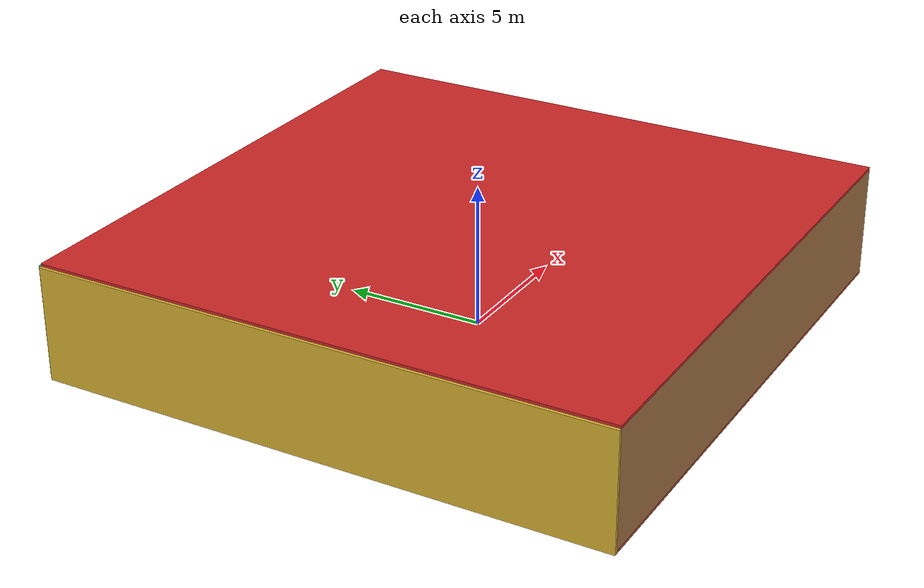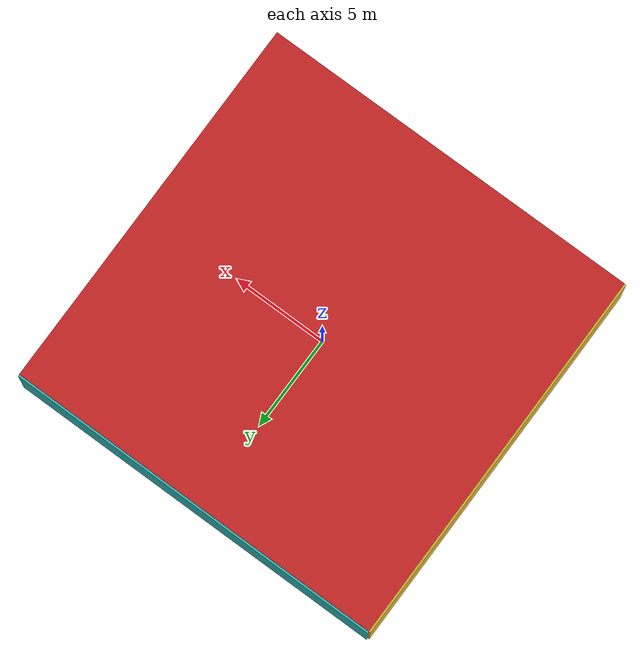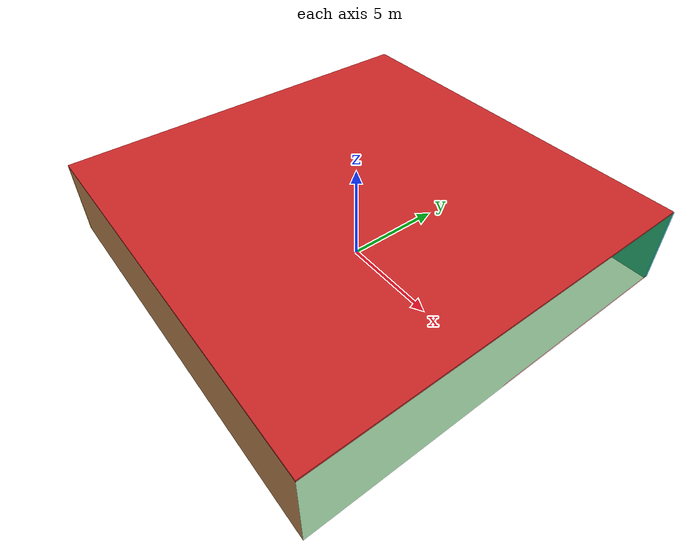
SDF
<sdf version="1.4">
 <world name="default">
  <physics type="ode">
   <max_step_size>0.001</max_step_size>
   <real_time_factor>1</real_time_factor>
   <real_time_update_rate>1000</real_time_update_rate>
   <gravity>0 0 -9.8</gravity>
  </physics>
  <scene><ambient>0.4 0.4 0.4 1</ambient><background>0.7 0.7 0.7 1</background><shadows>1</shadows></scene>
  <model name="Surrounding">
   <static>1</static>
   <link name="Ceiling">
    <collision name="Ceiling_Collision"><geometry><box><size>20 20 0.1</size></box></geometry></collision>
    <visual name="Ceiling_Visual">
     <geometry><box><size>20 20 0.1</size></box></geometry>
     <material>
      <script><uri>file://media/materials/scripts/gazebo.material</uri><name>Gazebo/Red</name></script>
     </material>
    </visual>
    <pose>0 0 4.05 0 0 0</pose>
   </link>
   <link name="Wall_South">
    <collision name="Wall_South_Collision">
     <geometry><box><size>20 0 4</size></box></geometry>
     <pose>0 0 2 0 -0 0</pose>
    </collision>
    <visual name="Wall_South_Visual">
     <pose>0 0 2 0 -0 0</pose>
     <geometry><box><size>20 0 4</size></box></geometry>
     <material>
      <script><uri>file://media/materials/scripts/gazebo.material</uri><name>Gazebo/WoodFloor</name></script>
     </material>
    </visual>
    <velocity_decay><linear>0</linear><angular>0</angular></velocity_decay>
    <pose>0 -10 0 0 -0 0</pose>
   </link>
   <link name="Wall_East">
    <collision name="Wall_21_Collision">
     <geometry><box><size>20 0 4</size></box></geometry>
     <pose>0 0 2 0 -0 0</pose>
    </collision>
    <visual name="Wall_21_Visual">
     <pose>0 0 2 0 -0 0</pose>
     <geometry><box><size>20 0 4</size></box></geometry>
     <material>
      <script><uri>file://media/materials/scripts/gazebo.material</uri><name>Gazebo/GreenTransparent</name></script>
     </material>
    </visual>
    <velocity_decay><linear>0</linear><angular>0</angular></velocity_decay>
    <pose>10 0 0 0 -0 1.5708</pose>
   </link>
   <link name="Wall_North">
    <collision name="Wall_22_Collision">
     <geometry><box><size>20 0.2 4</size></box></geometry>
     <pose>0 0 2 0 -0 0</pose>
    </collision>
    <visual name="Wall_22_Visual">
     <pose>0 0 2 0 -0 0</pose>
     <geometry><box><size>20 0.2 4</size></box></geometry>
     <material>
      <script><uri>file://media/materials/scripts/gazebo.material</uri><name>Gazebo/Turquoise</name></script>
     </material>
    </visual>
    <velocity_decay><linear>0</linear><angular>0</angular></velocity_decay>
    <pose>0 10 0 0 -0 0</pose>
   </link>
   <link name="Wall_West">
    <collision name="Wall_23_Collision">
     <geometry><box><size>20 0.2 4</size></box></geometry>
     <pose>0 0 2 0 -0 0</pose>
    </collision>
    <visual name="Wall_23_Visual">
     <pose>0 0 2 0 -0 0</pose>
     <geometry><box><size>20 0.2 4</size></box></geometry>
     <material>
      <script><uri>file://media/materials/scripts/gazebo.material</uri><name>Gazebo/Gold</name></script>
     </material>
    </visual>
    <velocity_decay><linear>0</linear><angular>0</angular></velocity_decay>
    <pose>-10 0 0 0 0 -1.5708</pose>
   </link>
   <link name="Ground_link">
    <collision name="collision">
     <pose>0 0 .05 0 -0 0</pose>
     <geometry><box><size>20 20 0.1</size></box></geometry>
    </collision>
    <visual name="visual">
     <pose>0 0 .05 0 -0 0</pose>
     <geometry><box><size>20 20 0.1</size></box></geometry>
     <material>
      <script><uri>file://media/materials/scripts/gazebo.material</uri><name>Gazebo/RedTransparent</name></script>
     </material>
    </visual>
   </link>
   <static>1</static>
  </model>
  <spherical_coordinates>
   <surface_model>EARTH_WGS84</surface_model>
   <latitude_deg>0</latitude_deg>
   <longitude_deg>0</longitude_deg>
   <elevation>0</elevation>
   <heading_deg>0</heading_deg>
  </spherical_coordinates>
  <light name="lightball_0" type="diffuse">
   <diffuse>0.8 0.8 0.8 1</diffuse>
   <specular>0.2 0.2 0.2 1</specular>
   <attenuation>
    <range>100</range>
    <constant>0.7</constant>
    <linear>0.01</linear>
    <quadratic>0.001</quadratic>
   </attenuation>
   <direction>-0.5 0.1 -0.9</direction>
   <pose>6.39078627743 8.98682954078 3.11641035257 0 0 0</pose>
  </light>
  <light name="lightball_1" type="diffuse">
   <diffuse>0.8 0.8 0.8 1</diffuse>
   <specular>0.2 0.2 0.2 1</specular>
   <attenuation>
    <range>100</range>
    <constant>0.7</constant>
    <linear>0.01</linear>
    <quadratic>0.001</quadratic>
   </attenuation>
   <direction>-0.5 0.1 -0.9</direction>
   <pose>-0.970666435883 -1.33203062054 0.806531726339 0 0 0</pose>
  </light>
  <light name="lightball_2" type="diffuse">
   <diffuse>0.8 0.8 0.8 1</diffuse>
   <specular>0.2 0.2 0.2 1</specular>
   <attenuation>
    <range>100</range>
    <constant>0.7</constant>
    <linear>0.01</linear>
    <quadratic>0.001</quadratic>
   </attenuation>
   <direction>-0.5 0.1 -0.9</direction>
   <pose>-9.4974780227 -9.70144252227 1.35244610852 0 0 0</pose>
  </light>
  <light name="lightball_3" type="diffuse">
   <diffuse>0.8 0.8 0.8 1</diffuse>
   <specular>0.2 0.2 0.2 1</specular>
   <attenuation>
    <range>100</range>
    <constant>0.7</constant>
    <linear>0.01</linear>
    <quadratic>0.001</quadratic>
   </attenuation>
   <direction>-0.5 0.1 -0.9</direction>
   <pose>-7.67194149363 -3.9833884534 3.29286335256 0 0 0</pose>
  </light>
  <light name="lightball_4" type="diffuse">
   <diffuse>0.8 0.8 0.8 1</diffuse>
   <specular>0.2 0.2 0.2 1</specular>
   <attenuation>
    <range>100</range>
    <constant>0.7</constant>
    <linear>0.01</linear>
    <quadratic>0.001</quadratic>
   </attenuation>
   <direction>-0.5 0.1 -0.9</direction>
   <pose>4.82069269894 -6.98416891067 2.98773159838 0 0 0</pose>
  </light>
  <light name="lightball_5" type="diffuse">
   <diffuse>0.8 0.8 0.8 1</diffuse>
   <specular>0.2 0.2 0.2 1</specular>
   <attenuation>
    <range>100</range>
    <constant>0.7</constant>
    <linear>0.01</linear>
    <quadratic>0.001</quadratic>
   </attenuation>
   <direction>-0.5 0.1 -0.9</direction>
   <pose>0.882279126057 2.86662080147 3.40833359 0 0 0</pose>
  </light>
  <light name="lightball_6" type="diffuse">
   <diffuse>0.8 0.8 0.8 1</diffuse>
   <specular>0.2 0.2 0.2 1</specular>
   <attenuation>
    <range>100</range>
    <constant>0.7</constant>
    <linear>0.01</linear>
    <quadratic>0.001</quadratic>
   </attenuation>
   <direction>-0.5 0.1 -0.9</direction>
   <pose>5.29279392018 1.73652388284 2.58075266756 0 0 0</pose>
  </light>
  <light name="lightball_7" type="diffuse">
   <diffuse>0.8 0.8 0.8 1</diffuse>
   <specular>0.2 0.2 0.2 1</specular>
   <attenuation>
    <range>100</range>
    <constant>0.7</constant>
    <linear>0.01</linear>
    <quadratic>0.001</quadratic>
   </attenuation>
   <direction>-0.5 0.1 -0.9</direction>
   <pose>1.29262034974 6.00530036899 3.88673637797 0 0 0</pose>
  </light>
  <light name="lightball_8" type="diffuse">
   <diffuse>0.8 0.8 0.8 1</diffuse>
   <specular>0.2 0.2 0.2 1</specular>
   <attenuation>
    <range>100</range>
    <constant>0.7</constant>
    <linear>0.01</linear>
    <quadratic>0.001</quadratic>
   </attenuation>
   <direction>-0.5 0.1 -0.9</direction>
   <pose>-7.37141329492 6.372660631 0.772394379079 0 0 0</pose>
  </light>
  <light name="lightball_9" type="diffuse">
   <diffuse>0.8 0.8 0.8 1</diffuse>
   <specular>0.2 0.2 0.2 1</specular>
   <attenuation>
    <range>100</range>
    <constant>0.7</constant>
    <linear>0.01</linear>
    <quadratic>0.001</quadratic>
   </attenuation>
   <direction>-0.5 0.1 -0.9</direction>
   <pose>-0.394432055541 -7.8959599813 3.50949820844 0 0 0</pose>
  </light>
  <light name="lightball_10" type="diffuse">
   <diffuse>0.8 0.8 0.8 1</diffuse>
   <specular>0.2 0.2 0.2 1</specular>
   <attenuation>
    <range>100</range>
    <constant>0.7</constant>
    <linear>0.01</linear>
    <quadratic>0.001</quadratic>
   </attenuation>
   <direction>-0.5 0.1 -0.9</direction>
   <pose>9.14912094087 -0.74114002486 2.2819054279 0 0 0</pose>
  </light>
  <include><uri>model://cabinet</uri><pose>1.16435913108 -1.19656467501 0 0 0 0.894559444365</pose></include>
  <include><uri>model://cabinet</uri><pose>4.34196860119 -6.99613739117 0 0 0 1.59339759184</pose></include>
  <include><uri>model://cabinet</uri><pose>5.20158431005 7.47139575936 0 0 0 1.14926403067</pose></include>
 </world>
</sdf>

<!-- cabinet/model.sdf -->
<sdf version="1.5">
  <model name="cabinet">
    <static>true</static>
    <link name="cabinet_bottom_plate">
      <inertial>
        <pose>0 0 -1 0 0 0</pose>
        <inertia>
          <ixx>2.050000</ixx>
          <ixy>0</ixy>
          <ixz>0</ixz>
          <iyy>2.050000</iyy>
          <iyz>0</iyz>
          <izz>2.050000</izz>
        </inertia>
        <mass>25.000000</mass>
      </inertial>
      <collision name="cabinet_bottom_plate_geom">
        <pose>0 0 0.010000 0 0 0</pose>
        <geometry>
          <box>
            <size>0.450000 0.450000 0.020000</size>
          </box>
        </geometry>
      </collision>
      <visual name="cabinet_bottom_plate_geom_visual">
        <pose>0 0 0.010000 0 0 0</pose>
        <geometry>
          <box>
            <size>0.450000 0.450000 0.020000</size>
          </box>
        </geometry>
        <material>
          <script>
            <uri>model://media/materials/scripts/gazebo.material</uri>
            <name>Gazebo/Wood</name>
          </script>
        </material>
      </visual>
      <collision name="cabinet_bottom_plate_geom_cabinet_back_plate">
        <pose>0.235000 0 0.510000 0 0 0</pose>
        <geometry>
          <box>
            <size>0.020000 0.450000 1.020000</size>
          </box>
        </geometry>
      </collision>
      <visual name="cabinet_bottom_plate_geom_cabinet_back_plate_visual">
        <pose>0.235000 0 0.510000 0 0 0</pose>
        <geometry>
          <box>
            <size>0.020000 0.450000 1.020000</size>
          </box>
        </geometry>
        <material>
          <script>
            <uri>model://media/materials/scripts/gazebo.material</uri>
            <name>Gazebo/Wood</name>
          </script>
        </material>
      </visual>
      <collision name="cabinet_bottom_plate_geom_cabinet_left_plate">
        <pose>0 0.235000 0.510000 0 0 0</pose>
        <geometry>
          <box>
            <size>0.450000 0.020000 1.020000</size>
          </box>
        </geometry>
      </collision>
      <visual name="cabinet_bottom_plate_geom_cabinet_left_plate_visual">
        <pose>0 0.235000 0.510000 0 0 0</pose>
        <geometry>
          <box>
            <size>0.450000 0.020000 1.020000</size>
          </box>
        </geometry>
        <material>
          <script>
            <uri>model://media/materials/scripts/gazebo.material</uri>
            <name>Gazebo/Wood</name>
          </script>
        </material>
      </visual>
      <collision name="cabinet_bottom_plate_geom_cabinet_middle_plate">
        <pose>0 0 0.510000 0 0 0</pose>
        <geometry>
          <box>
            <size>0.450000 0.450000 0.020000</size>
          </box>
        </geometry>
      </collision>
      <visual name="cabinet_bottom_plate_geom_cabinet_middle_plate_visual">
        <pose>0 0 0.510000 0 0 0</pose>
        <geometry>
          <box>
            <size>0.450000 0.450000 0.020000</size>
          </box>
        </geometry>
        <material>
          <script>
            <uri>model://media/materials/scripts/gazebo.material</uri>
            <name>Gazebo/Wood</name>
          </script>
        </material>
      </visual>
      <collision name="cabinet_bottom_plate_geom_cabinet_right_plate">
        <pose>0 -0.235000 0.510000 0 0 0</pose>
        <geometry>
          <box>
            <size>0.450000 0.020000 1.020000</size>
          </box>
        </geometry>
      </collision>
      <visual name="cabinet_bottom_plate_geom_cabinet_right_plate_visual">
        <pose>0 -0.235000 0.510000 0 0 0</pose>
        <geometry>
          <box>
            <size>0.450000 0.020000 1.020000</size>
          </box>
        </geometry>
        <material>
          <script>
            <uri>model://media/materials/scripts/gazebo.material</uri>
            <name>Gazebo/Wood</name>
          </script>
        </material>
      </visual>
      <collision name="cabinet_bottom_plate_geom_cabinet_top_plate">
        <pose>0 0 1.010000 0 0 0</pose>
        <geometry>
          <box>
            <size>0.450000 0.450000 0.020000</size>
          </box>
        </geometry>
      </collision>
      <visual name="cabinet_bottom_plate_geom_cabinet_top_plate_visual">
        <pose>0 0 1.010000 0 0 0</pose>
        <geometry>
          <box>
            <size>0.450000 0.450000 0.020000</size>
          </box>
        </geometry>
        <material>
          <script>
            <uri>model://media/materials/scripts/gazebo.material</uri>
            <name>Gazebo/Wood</name>
          </script>
        </material>
      </visual>
    </link>
  </model>
</sdf>
